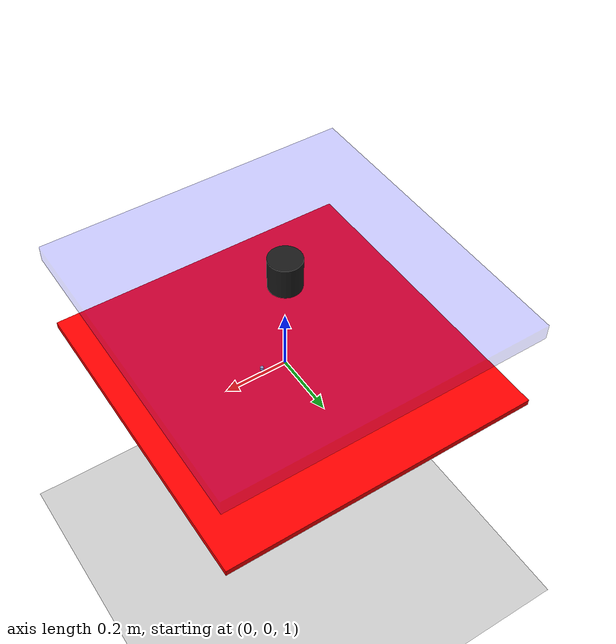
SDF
<?xml version="1.0"?>
<sdf version="1.4">
  <world name="default">

    <!-- Ground Plane -->
    <include>
      <uri>model://ground_plane</uri>
    </include>

    <include>
      <uri>model://sun</uri>
    </include>

    <model name="plane">
      <pose>0 0 1.0 0 0 0</pose>
      <static>true</static>
      <link name="link">
        <collision name="collision">
          <geometry>
            <box>
              <size>1 1 0.02</size>
            </box>
          </geometry>
        </collision>

        <visual name="visual">
          <geometry>
            <box>
              <size>1 1 0.02</size>
            </box>
          </geometry>

          <material>
            <ambient>1 0 0 1</ambient>
          </material>
        </visual>
      </link>
    </model>

    <model name="plane2">
      <pose>0 0 1.3 0 0 0</pose>
      <static>true</static>
      <link name="link">
        <collision name="collision">
          <geometry>
            <box>
              <size>1 1 0.05</size>
            </box>
          </geometry>
        </collision>

        <visual name="visual">
          <geometry>
            <box>
              <size>1 1 0.05</size>
            </box>
          </geometry>
          <transparency>0.5</transparency>
          <material>
            <diffuse>0 0 1 0.1</diffuse>
          </material>
        </visual>
      </link>
    </model>

    <model name="actuator_magnet">
      <pose>0 0 1.375 0 0 0</pose>
      <static>true</static>
      <link name="magnet">
        <inertial>
          <mass>4.0</mass>
        </inertial>
        <collision name="collision">
          <geometry>
            <cylinder>
              <radius>0.05</radius>
              <length>0.1</length>
            </cylinder>
          </geometry>
        </collision>

        <visual name="visual">
          <geometry>
            <cylinder>
              <radius>0.05</radius>
              <length>0.1</length>
            </cylinder>
          </geometry>
          <material>
            <diffuse>0.1 0.1 0.1 1</diffuse>
            <specular>0.1 0.1 0.1 1</specular>
            <emissive>0.5 0.5 0.5 0.1</emissive>
          </material>
        </visual>
      </link>
      <plugin name="dipole_magnet" filename="libstorm_gazebo_dipole_magnet.so">
        <bodyName>magnet</bodyName>
        <xyzOffset>0 0 0.2</xyzOffset>
        <rpyOffset>1.5707962368 0 0</rpyOffset>
        <xyzRange>0.5 0.5 10.0</xyzRange>
        <xyzVelLimit>5 5 10</xyzVelLimit>
        <debug>false</debug>
        <!-- Set to false if not using ROS -->
        <controllable>true</controllable>
        <topicNs>magnet_weebee</topicNs>
      </plugin>
    </model>

    <model name="capsule_magnet">
      <pose>0.08 0 1.025 0 0 0</pose>
      <link name="magnet">
        <inertial>
          <mass>0.1</mass>
          <inertia>
            <ixx>1.8e-6</ixx>
            <ixy>0</ixy>
            <ixz>0</ixz>
            <iyy>1.8e-6</iyy>
            <iyz>0</iyz>
            <izz>1.543e-6</izz>
          </inertia>
        </inertial>
        <collision name="collision">
          <geometry>
            <cylinder>
              <radius>0.005</radius>
              <length>0.01</length>
            </cylinder>
          </geometry>
        </collision>

        <visual name="visual">
          <geometry>
            <cylinder>
              <radius>0.005</radius>
              <length>0.01</length>
            </cylinder>
          </geometry>
        </visual>
      </link>
      <plugin name="dipole_magnet" filename="libstorm_gazebo_dipole_magnet.so">
          <bodyName>magnet</bodyName>
          <debug>true</debug>
          <controllable>false</controllable>
      </plugin>
    </model>

  </world>
</sdf>
